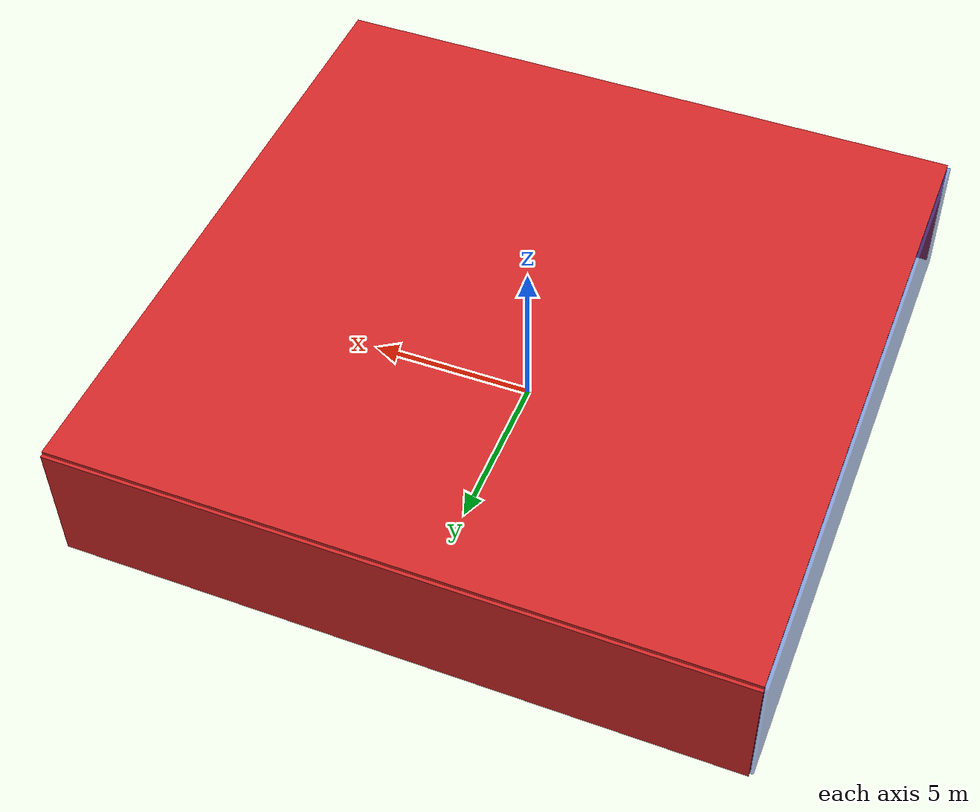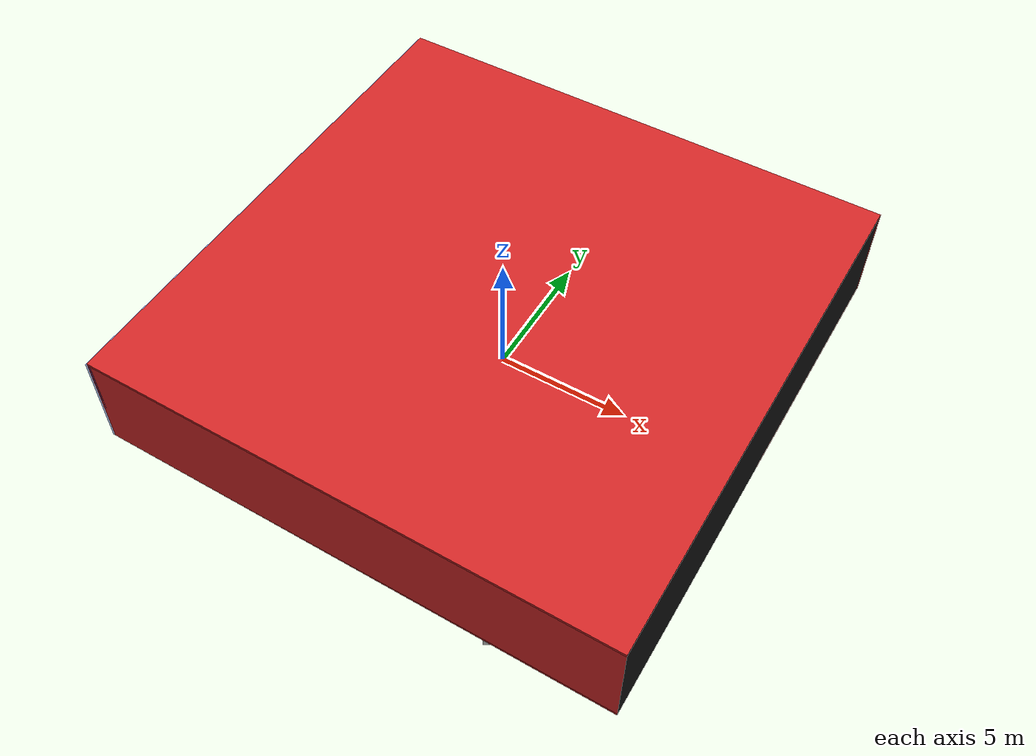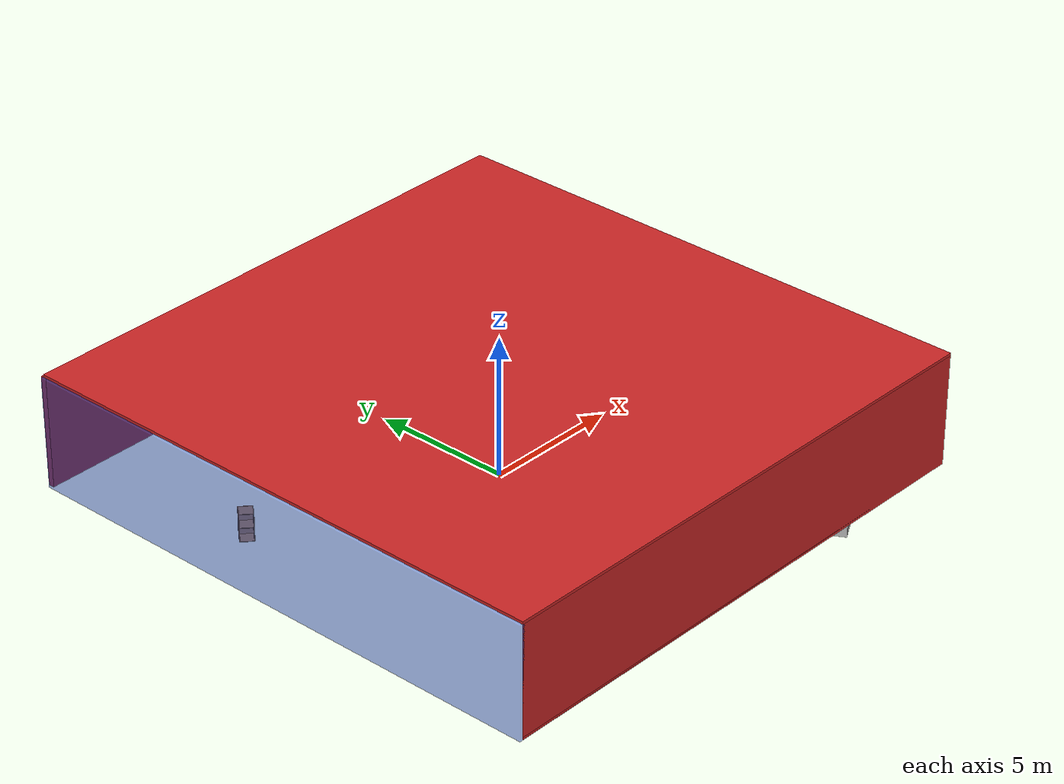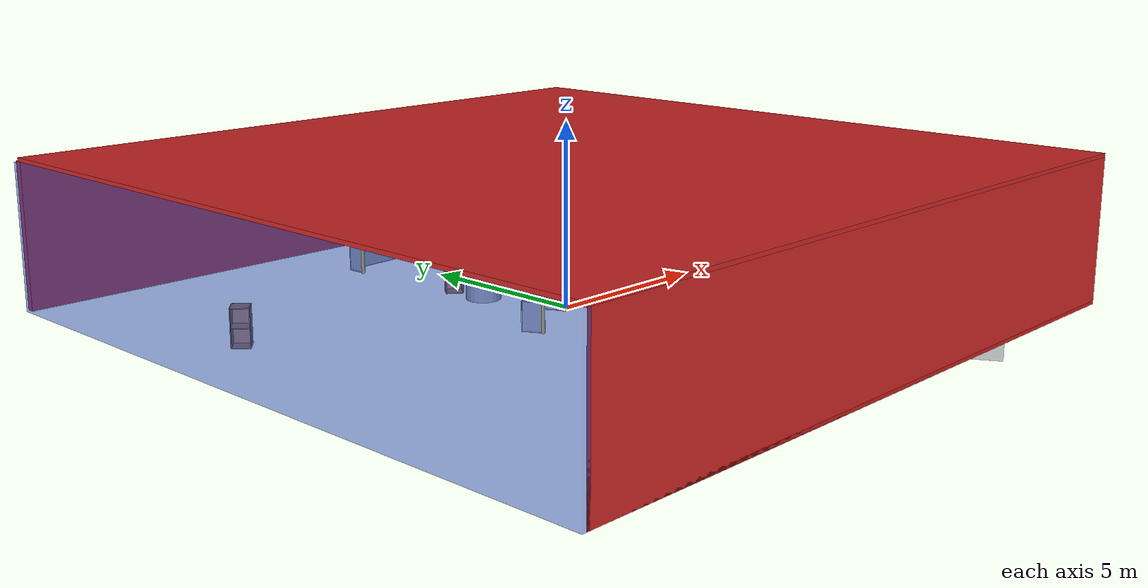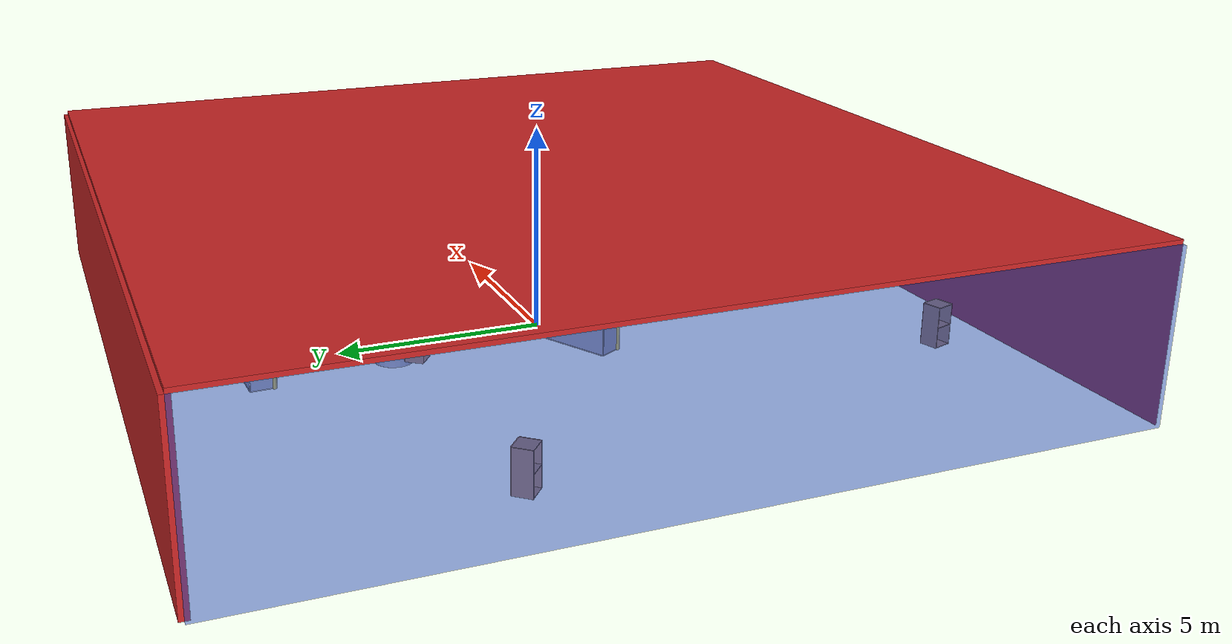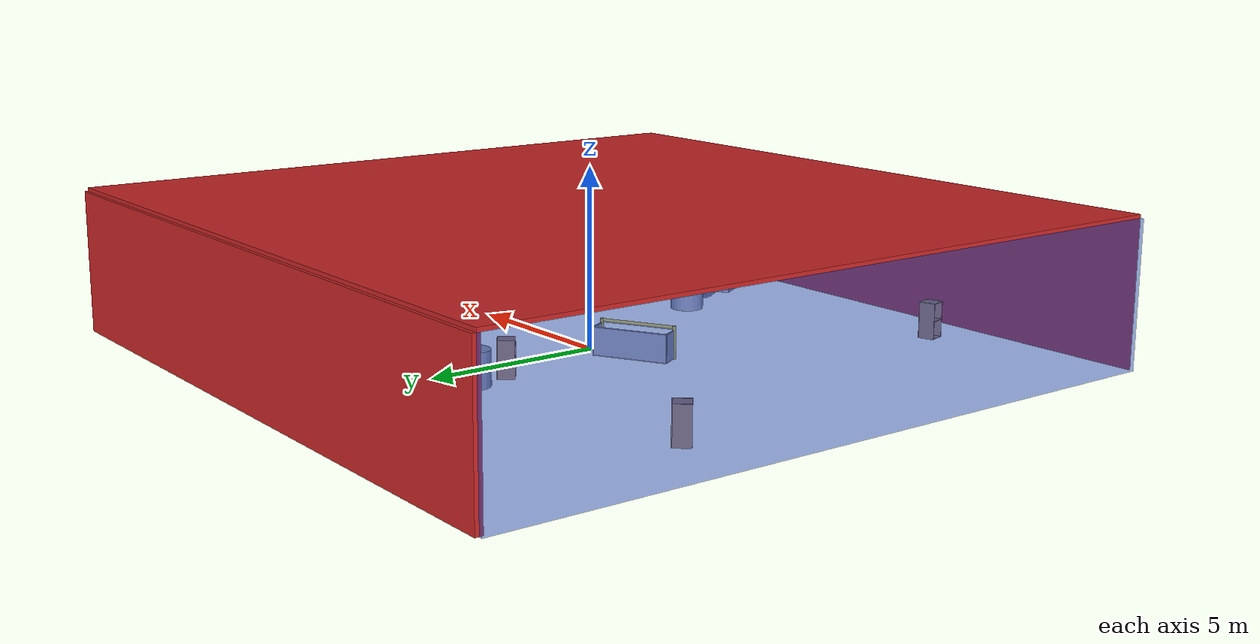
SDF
<sdf version="1.4">
 <world name="default">
  <physics type="ode">
   <max_step_size>0.001</max_step_size>
   <real_time_factor>1</real_time_factor>
   <real_time_update_rate>1000</real_time_update_rate>
   <gravity>0 0 -9.8</gravity>
  </physics>
  <scene><ambient>0.4 0.4 0.4 1</ambient><background>0.7 0.7 0.7 1</background><shadows>1</shadows></scene>
  <model name="Surrounding">
   <static>1</static>
   <link name="Ceiling">
    <collision name="Ceiling_Collision"><geometry><box><size>20 20 0.1</size></box></geometry></collision>
    <visual name="Ceiling_Visual">
     <geometry><box><size>20 20 0.1</size></box></geometry>
     <material>
      <script><uri>file://media/materials/scripts/gazebo.material</uri><name>Gazebo/RedGlow</name></script>
     </material>
    </visual>
    <pose>0 0 4.05 0 0 0</pose>
   </link>
   <link name="Wall_South">
    <collision name="Wall_South_Collision">
     <geometry><box><size>20 0 4</size></box></geometry>
     <pose>0 0 2 0 -0 0</pose>
    </collision>
    <visual name="Wall_South_Visual">
     <pose>0 0 2 0 -0 0</pose>
     <geometry><box><size>20 0 4</size></box></geometry>
     <material>
      <script><uri>file://media/materials/scripts/gazebo.material</uri><name>Gazebo/Red</name></script>
     </material>
    </visual>
    <velocity_decay><linear>0</linear><angular>0</angular></velocity_decay>
    <pose>0 -10 0 0 -0 0</pose>
   </link>
   <link name="Wall_East">
    <collision name="Wall_21_Collision">
     <geometry><box><size>20 0 4</size></box></geometry>
     <pose>0 0 2 0 -0 0</pose>
    </collision>
    <visual name="Wall_21_Visual">
     <pose>0 0 2 0 -0 0</pose>
     <geometry><box><size>20 0 4</size></box></geometry>
     <material>
      <script><uri>file://media/materials/scripts/gazebo.material</uri><name>Gazebo/FlatBlack</name></script>
     </material>
    </visual>
    <velocity_decay><linear>0</linear><angular>0</angular></velocity_decay>
    <pose>10 0 0 0 -0 1.5708</pose>
   </link>
   <link name="Wall_North">
    <collision name="Wall_22_Collision">
     <geometry><box><size>20 0.2 4</size></box></geometry>
     <pose>0 0 2 0 -0 0</pose>
    </collision>
    <visual name="Wall_22_Visual">
     <pose>0 0 2 0 -0 0</pose>
     <geometry><box><size>20 0.2 4</size></box></geometry>
     <material>
      <script><uri>file://media/materials/scripts/gazebo.material</uri><name>Gazebo/Red</name></script>
     </material>
    </visual>
    <velocity_decay><linear>0</linear><angular>0</angular></velocity_decay>
    <pose>0 10 0 0 -0 0</pose>
   </link>
   <link name="Wall_West">
    <collision name="Wall_23_Collision">
     <geometry><box><size>20 0.2 4</size></box></geometry>
     <pose>0 0 2 0 -0 0</pose>
    </collision>
    <visual name="Wall_23_Visual">
     <pose>0 0 2 0 -0 0</pose>
     <geometry><box><size>20 0.2 4</size></box></geometry>
     <material>
      <script><uri>file://media/materials/scripts/gazebo.material</uri><name>Gazebo/BlueTransparent</name></script>
     </material>
    </visual>
    <velocity_decay><linear>0</linear><angular>0</angular></velocity_decay>
    <pose>-10 0 0 0 0 -1.5708</pose>
   </link>
   <link name="Ground_link">
    <collision name="collision">
     <pose>0 0 .05 0 -0 0</pose>
     <geometry><box><size>20 20 0.1</size></box></geometry>
    </collision>
    <visual name="visual">
     <pose>0 0 .05 0 -0 0</pose>
     <geometry><box><size>20 20 0.1</size></box></geometry>
     <material>
      <script><uri>file://media/materials/scripts/gazebo.material</uri><name>Gazebo/RedTransparent</name></script>
     </material>
    </visual>
   </link>
   <static>1</static>
  </model>
  <spherical_coordinates>
   <surface_model>EARTH_WGS84</surface_model>
   <latitude_deg>0</latitude_deg>
   <longitude_deg>0</longitude_deg>
   <elevation>0</elevation>
   <heading_deg>0</heading_deg>
  </spherical_coordinates>
  <light name="lightball_0" type="diffuse">
   <diffuse>0.8 0.8 0.8 1</diffuse>
   <specular>0.2 0.2 0.2 1</specular>
   <attenuation>
    <range>100</range>
    <constant>0.7</constant>
    <linear>0.01</linear>
    <quadratic>0.001</quadratic>
   </attenuation>
   <direction>-0.5 0.1 -0.9</direction>
   <pose>-7.29285084501 4.42049779861 2.49911751787 0 0 0</pose>
  </light>
  <light name="lightball_1" type="diffuse">
   <diffuse>0.8 0.8 0.8 1</diffuse>
   <specular>0.2 0.2 0.2 1</specular>
   <attenuation>
    <range>100</range>
    <constant>0.7</constant>
    <linear>0.01</linear>
    <quadratic>0.001</quadratic>
   </attenuation>
   <direction>-0.5 0.1 -0.9</direction>
   <pose>1.77402558085 3.58563577703 1.71692329698 0 0 0</pose>
  </light>
  <light name="lightball_2" type="diffuse">
   <diffuse>0.8 0.8 0.8 1</diffuse>
   <specular>0.2 0.2 0.2 1</specular>
   <attenuation>
    <range>100</range>
    <constant>0.7</constant>
    <linear>0.01</linear>
    <quadratic>0.001</quadratic>
   </attenuation>
   <direction>-0.5 0.1 -0.9</direction>
   <pose>0.711819675112 -3.74901740516 1.94808616009 0 0 0</pose>
  </light>
  <light name="lightball_3" type="diffuse">
   <diffuse>0.8 0.8 0.8 1</diffuse>
   <specular>0.2 0.2 0.2 1</specular>
   <attenuation>
    <range>100</range>
    <constant>0.7</constant>
    <linear>0.01</linear>
    <quadratic>0.001</quadratic>
   </attenuation>
   <direction>-0.5 0.1 -0.9</direction>
   <pose>-3.56543258666 -3.97643452859 3.01560071953 0 0 0</pose>
  </light>
  <light name="lightball_4" type="diffuse">
   <diffuse>0.8 0.8 0.8 1</diffuse>
   <specular>0.2 0.2 0.2 1</specular>
   <attenuation>
    <range>100</range>
    <constant>0.7</constant>
    <linear>0.01</linear>
    <quadratic>0.001</quadratic>
   </attenuation>
   <direction>-0.5 0.1 -0.9</direction>
   <pose>6.6924438319 2.35077576928 0.847212846786 0 0 0</pose>
  </light>
  <light name="lightball_5" type="diffuse">
   <diffuse>0.8 0.8 0.8 1</diffuse>
   <specular>0.2 0.2 0.2 1</specular>
   <attenuation>
    <range>100</range>
    <constant>0.7</constant>
    <linear>0.01</linear>
    <quadratic>0.001</quadratic>
   </attenuation>
   <direction>-0.5 0.1 -0.9</direction>
   <pose>7.04028115298 -4.35522525845 2.35052666119 0 0 0</pose>
  </light>
  <light name="lightball_6" type="diffuse">
   <diffuse>0.8 0.8 0.8 1</diffuse>
   <specular>0.2 0.2 0.2 1</specular>
   <attenuation>
    <range>100</range>
    <constant>0.7</constant>
    <linear>0.01</linear>
    <quadratic>0.001</quadratic>
   </attenuation>
   <direction>-0.5 0.1 -0.9</direction>
   <pose>2.19764589262 -2.22408430121 1.8324107019 0 0 0</pose>
  </light>
  <light name="lightball_7" type="diffuse">
   <diffuse>0.8 0.8 0.8 1</diffuse>
   <specular>0.2 0.2 0.2 1</specular>
   <attenuation>
    <range>100</range>
    <constant>0.7</constant>
    <linear>0.01</linear>
    <quadratic>0.001</quadratic>
   </attenuation>
   <direction>-0.5 0.1 -0.9</direction>
   <pose>6.43642675607 9.23368028808 1.02607001817 0 0 0</pose>
  </light>
  <include><uri>model://cabinet</uri><pose>-7.93782129553 3.30891412026 0 0 0 0.862686027359</pose></include>
  <include><uri>model://cabinet</uri><pose>-4.5360769445 -8.43946664747 0 0 0 0.29363679852</pose></include>
  <include>
   <uri>model://robocup_3Dsim_goal</uri>
   <pose>-1.19018266549 -0.71044744807 0 0 0 2.07340070991</pose>
  </include>
  <include><uri>model://cabinet</uri><pose>-0.970208758036 3.35911477893 0 0 0 0.931194192302</pose></include>
  <include>
   <uri>model://robocup_3Dsim_goal</uri>
   <pose>-0.367996341802 6.83428786526 0 0 0 1.6119323905</pose>
  </include>
  <include>
   <uri>model://textured_shapes</uri>
   <pose>1.37490303469 4.64868987703 0 0 0 2.37888214233</pose>
  </include>
  <include>
   <uri>model://textured_shapes</uri>
   <pose>4.62744476842 -7.93500798738 0 0 0 0.517344748507</pose>
  </include>
 </world>
</sdf>

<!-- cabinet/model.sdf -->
<sdf version="1.5">
  <model name="cabinet">
    <static>true</static>
    <link name="cabinet_bottom_plate">
      <inertial>
        <pose>0 0 -1 0 0 0</pose>
        <inertia>
          <ixx>2.050000</ixx>
          <ixy>0</ixy>
          <ixz>0</ixz>
          <iyy>2.050000</iyy>
          <iyz>0</iyz>
          <izz>2.050000</izz>
        </inertia>
        <mass>25.000000</mass>
      </inertial>
      <collision name="cabinet_bottom_plate_geom">
        <pose>0 0 0.010000 0 0 0</pose>
        <geometry>
          <box>
            <size>0.450000 0.450000 0.020000</size>
          </box>
        </geometry>
      </collision>
      <visual name="cabinet_bottom_plate_geom_visual">
        <pose>0 0 0.010000 0 0 0</pose>
        <geometry>
          <box>
            <size>0.450000 0.450000 0.020000</size>
          </box>
        </geometry>
        <material>
          <script>
            <uri>model://media/materials/scripts/gazebo.material</uri>
            <name>Gazebo/Wood</name>
          </script>
        </material>
      </visual>
      <collision name="cabinet_bottom_plate_geom_cabinet_back_plate">
        <pose>0.235000 0 0.510000 0 0 0</pose>
        <geometry>
          <box>
            <size>0.020000 0.450000 1.020000</size>
          </box>
        </geometry>
      </collision>
      <visual name="cabinet_bottom_plate_geom_cabinet_back_plate_visual">
        <pose>0.235000 0 0.510000 0 0 0</pose>
        <geometry>
          <box>
            <size>0.020000 0.450000 1.020000</size>
          </box>
        </geometry>
        <material>
          <script>
            <uri>model://media/materials/scripts/gazebo.material</uri>
            <name>Gazebo/Wood</name>
          </script>
        </material>
      </visual>
      <collision name="cabinet_bottom_plate_geom_cabinet_left_plate">
        <pose>0 0.235000 0.510000 0 0 0</pose>
        <geometry>
          <box>
            <size>0.450000 0.020000 1.020000</size>
          </box>
        </geometry>
      </collision>
      <visual name="cabinet_bottom_plate_geom_cabinet_left_plate_visual">
        <pose>0 0.235000 0.510000 0 0 0</pose>
        <geometry>
          <box>
            <size>0.450000 0.020000 1.020000</size>
          </box>
        </geometry>
        <material>
          <script>
            <uri>model://media/materials/scripts/gazebo.material</uri>
            <name>Gazebo/Wood</name>
          </script>
        </material>
      </visual>
      <collision name="cabinet_bottom_plate_geom_cabinet_middle_plate">
        <pose>0 0 0.510000 0 0 0</pose>
        <geometry>
          <box>
            <size>0.450000 0.450000 0.020000</size>
          </box>
        </geometry>
      </collision>
      <visual name="cabinet_bottom_plate_geom_cabinet_middle_plate_visual">
        <pose>0 0 0.510000 0 0 0</pose>
        <geometry>
          <box>
            <size>0.450000 0.450000 0.020000</size>
          </box>
        </geometry>
        <material>
          <script>
            <uri>model://media/materials/scripts/gazebo.material</uri>
            <name>Gazebo/Wood</name>
          </script>
        </material>
      </visual>
      <collision name="cabinet_bottom_plate_geom_cabinet_right_plate">
        <pose>0 -0.235000 0.510000 0 0 0</pose>
        <geometry>
          <box>
            <size>0.450000 0.020000 1.020000</size>
          </box>
        </geometry>
      </collision>
      <visual name="cabinet_bottom_plate_geom_cabinet_right_plate_visual">
        <pose>0 -0.235000 0.510000 0 0 0</pose>
        <geometry>
          <box>
            <size>0.450000 0.020000 1.020000</size>
          </box>
        </geometry>
        <material>
          <script>
            <uri>model://media/materials/scripts/gazebo.material</uri>
            <name>Gazebo/Wood</name>
          </script>
        </material>
      </visual>
      <collision name="cabinet_bottom_plate_geom_cabinet_top_plate">
        <pose>0 0 1.010000 0 0 0</pose>
        <geometry>
          <box>
            <size>0.450000 0.450000 0.020000</size>
          </box>
        </geometry>
      </collision>
      <visual name="cabinet_bottom_plate_geom_cabinet_top_plate_visual">
        <pose>0 0 1.010000 0 0 0</pose>
        <geometry>
          <box>
            <size>0.450000 0.450000 0.020000</size>
          </box>
        </geometry>
        <material>
          <script>
            <uri>model://media/materials/scripts/gazebo.material</uri>
            <name>Gazebo/Wood</name>
          </script>
        </material>
      </visual>
    </link>
  </model>
</sdf>

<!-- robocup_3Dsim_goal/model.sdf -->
<sdf version="1.5">
  <model name="robocup_3d_goal">
    <static>true</static>
    <link name="left_post">
      <pose>0 1.05 0.45 0 0 0</pose>
      <collision name="collision">
        <geometry>
          <cylinder>
            <radius>0.05</radius>
            <length>0.9</length>
          </cylinder>
        </geometry>
      </collision>
      <visual name="visual">
        <geometry>
          <cylinder>
            <radius>0.05</radius>
            <length>0.9</length>
          </cylinder>
        </geometry>
        <material>
          <script>
            <uri>file://media/materials/scripts/gazebo.material</uri>
            <name>Gazebo/ZincYellow</name>
          </script>
        </material>
      </visual>
    </link>
    <link name="left_support_horiz_lower">
      <pose>0.30 1.05 0.01 0 0 0</pose>
      <collision name="collision">
        <geometry>
          <box>
            <size>0.50 0.02 0.02</size>
          </box>
        </geometry>
      </collision>
      <visual name="visual">
        <geometry>
          <box>
            <size>0.50 0.02 0.02</size>
          </box>
        </geometry>
        <material>
          <script>
            <uri>file://media/materials/scripts/gazebo.material</uri>
            <name>Gazebo/White</name>
          </script>
        </material>
      </visual>
    </link>
    <link name="left_support_horiz_upper">
      <pose>0.30 1.05 0.79 0 0 0</pose>
      <collision name="collision">
        <geometry>
          <box>
            <size>0.50 0.02 0.02</size>
          </box>
        </geometry>
      </collision>
      <visual name="visual">
        <geometry>
          <box>
            <size>0.50 0.02 0.02</size>
          </box>
        </geometry>
        <material>
          <script>
            <uri>file://media/materials/scripts/gazebo.material</uri>
            <name>Gazebo/White</name>
          </script>
        </material>
      </visual>
    </link>
    <link name="left_support_vertical">
      <pose>0.56 1.05 0.4 0 1.5708 0</pose>
      <collision name="collision">
        <geometry>
          <box>
            <size>0.80 0.02 0.02</size>
          </box>
        </geometry>
      </collision>
      <visual name="visual">
        <geometry>
          <box>
            <size>0.80 0.02 0.02</size>
          </box>
        </geometry>
        <material>
          <script>
            <uri>file://media/materials/scripts/gazebo.material</uri>
            <name>Gazebo/White</name>
          </script>
        </material>
      </visual>
    </link>
    <link name="right_support_horiz_lower">
      <pose>0.30 -1.05 0.01 0 0 0</pose>
      <collision name="collision">
        <geometry>
          <box>
            <size>0.50 0.02 0.02</size>
          </box>
        </geometry>
      </collision>
      <visual name="visual">
        <geometry>
          <box>
            <size>0.50 0.02 0.02</size>
          </box>
        </geometry>
        <material>
          <script>
            <uri>file://media/materials/scripts/gazebo.material</uri>
            <name>Gazebo/White</name>
          </script>
        </material>
      </visual>
    </link>
    <link name="right_support_horiz_upper">
      <pose>0.30 -1.05 0.79 0 0 0</pose>
      <collision name="collision">
        <geometry>
          <box>
            <size>0.50 0.02 0.02</size>
          </box>
        </geometry>
      </collision>
      <visual name="visual">
        <geometry>
          <box>
            <size>0.50 0.02 0.02</size>
          </box>
        </geometry>
        <material>
          <script>
            <uri>file://media/materials/scripts/gazebo.material</uri>
            <name>Gazebo/White</name>
          </script>
        </material>
      </visual>
    </link>
    <link name="right_support_vertical">
      <pose>0.56 -1.05 0.4 0 1.5708 0</pose>
      <collision name="collision">
        <geometry>
          <box>
            <size>0.80 0.02 0.02</size>
          </box>
        </geometry>
      </collision>
      <visual name="visual">
        <geometry>
          <box>
            <size>0.80 0.02 0.02</size>
          </box>
        </geometry>
        <material>
          <script>
            <uri>file://media/materials/scripts/gazebo.material</uri>
            <name>Gazebo/White</name>
          </script>
        </material>
      </visual>
    </link>
    <link name="center_support_horiz_lower">
      <pose>0.56 0 0.01 0 1.5708 0</pose>
      <collision name="collision">
        <geometry>
          <box>
            <size>0.02 2.08 0.02</size>
          </box>
        </geometry>
      </collision>
      <visual name="visual">
        <geometry>
          <box>
            <size>0.02 2.08 0.02</size>
          </box>
        </geometry>
        <material>
          <script>
            <uri>file://media/materials/scripts/gazebo.material</uri>
            <name>Gazebo/White</name>
          </script>
        </material>
      </visual>
    </link>
    <link name="center_support_horiz_upper">
      <pose>0.56 0 0.79 0 1.5708 0</pose>
      <collision name="collision">
        <geometry>
          <box>
            <size>0.02 2.08 0.02</size>
          </box>
        </geometry>
      </collision>
      <visual name="visual">
        <geometry>
          <box>
            <size>0.02 2.08 0.02</size>
          </box>
        </geometry>
        <material>
          <script>
            <uri>file://media/materials/scripts/gazebo.material</uri>
            <name>Gazebo/White</name>
          </script>
        </material>
      </visual>
    </link>
    <link name="right_post">
      <pose>0 -1.05 0.45 0 0 0</pose>
      <collision name="collision">
        <geometry>
          <cylinder>
            <radius>0.05</radius>
            <length>0.9</length>
          </cylinder>
        </geometry>
      </collision>
      <visual name="visual">
        <geometry>
          <cylinder>
            <radius>0.05</radius>
            <length>0.9</length>
          </cylinder>
        </geometry>
        <material>
          <script>
            <uri>file://media/materials/scripts/gazebo.material</uri>
            <name>Gazebo/ZincYellow</name>
          </script>
        </material>
      </visual>
    </link>
    <link name="crossbar">
      <pose>0 0 0.85 1.57 1.57 0</pose>
      <collision name="collision">
        <geometry>
          <cylinder>
            <radius>0.05</radius>
            <length>2.0</length>
          </cylinder>
        </geometry>
      </collision>
      <visual name="visual">
        <geometry>
          <cylinder>
            <radius>0.05</radius>
            <length>2.0</length>
          </cylinder>
        </geometry>
        <material>
          <script>
            <uri>file://media/materials/scripts/gazebo.material</uri>
            <name>Gazebo/ZincYellow</name>
          </script>
        </material>
      </visual>
    </link>
    <link name="center_net">
      <pose>0.56 0 0.40 0 0 0</pose>
      <collision name="collision">
        <geometry>
          <box>
            <size>0.01 2.1 0.80</size>
          </box>
        </geometry>
      </collision>
      <visual name="visual">
        <geometry>
          <box>
            <size>0.01 2.1 0.80</size>
          </box>
        </geometry>
        <material>
          <script>
            <uri>model://../model_source/models/robocup09_spl_field/materials/scripts/</uri>
            <uri>model://../model_source/models/robocup09_spl_field/materials/textures/</uri>
            <name>RoboCup/Net</name>
          </script>
        </material>
      </visual>
    </link>
    <link name="left_net">
      <pose>0.30 1.05 0.40 0 0 0</pose>
      <collision name="collision">
        <geometry>
          <box>
            <size>0.50 0.01 0.76</size>
          </box>
        </geometry>
      </collision>
      <visual name="visual">
        <geometry>
          <box>
            <size>0.50 0.01 0.76</size>
          </box>
        </geometry>
        <material>
          <script>
            <uri>model://../model_source/models/robocup09_spl_field/materials/scripts/</uri>
            <uri>model://../model_source/models/robocup09_spl_field/materials/textures/</uri>
            <name>RoboCup/Net</name>
          </script>
        </material>
      </visual>
    </link>
    <link name="right_net">
      <pose>0.30 -1.05 0.40 0 0 0</pose>
      <collision name="collision">
        <geometry>
          <box>
            <size>0.50 0.01 0.76</size>
          </box>
        </geometry>
      </collision>
      <visual name="visual">
        <geometry>
          <box>
            <size>0.50 0.01 0.76</size>
          </box>
        </geometry>
        <material>
          <script>
            <uri>model://../model_source/models/robocup09_spl_field/materials/scripts/</uri>
            <uri>model://../model_source/models/robocup09_spl_field/materials/textures/</uri>
            <name>RoboCup/Net</name>
          </script>
        </material>
      </visual>
    </link>
  </model>
</sdf>

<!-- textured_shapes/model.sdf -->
<sdf version="1.6">
  <model name="textured_shapes">
    <pose>0 0 0.5 0 0 0</pose>
    <link name="box">
      <pose>0 -1.5 0 0 0 0</pose>
      <collision name="collision">
        <geometry>
          <box>
            <size>1 1 1</size>
          </box>
        </geometry>
      </collision>
      <visual name="visual">
        <geometry>
          <box>
            <size>1 1 1</size>
          </box>
        </geometry>
        <material>
          <script>
            <uri>model://../model_source/models/textured_shapes/materials/scripts</uri>
            <uri>model://../model_source/models/textured_shapes/materials/textures</uri>
            <name>TexturedShape/Squares</name>
          </script>
        </material>
      </visual>
    </link>
    <link name="sphere">
      <collision name="collision">
        <geometry>
          <sphere>
            <radius>0.5</radius>
          </sphere>
        </geometry>
      </collision>
      <visual name="visual">
        <geometry>
          <sphere>
            <radius>0.5</radius>
          </sphere>
        </geometry>
        <material>
          <script>
            <uri>model://../model_source/models/textured_shapes/materials/scripts</uri>
            <uri>model://../model_source/models/textured_shapes/materials/textures</uri>
            <name>TexturedShape/Squares</name>
          </script>
        </material>
      </visual>
    </link>
    <link name="cylinder">
      <pose>0 1.5 0 0 0 0</pose>
      <collision name="collision">
        <geometry>
          <cylinder>
            <radius>0.5</radius>
            <length>1</length>
          </cylinder>
        </geometry>
      </collision>
      <visual name="visual">
        <geometry>
          <cylinder>
            <radius>0.5</radius>
            <length>1</length>
          </cylinder>
        </geometry>
        <material>
          <script>
            <uri>model://../model_source/models/textured_shapes/materials/scripts</uri>
            <uri>model://../model_source/models/textured_shapes/materials/textures</uri>
            <name>TexturedShape/Squares</name>
          </script>
        </material>
      </visual>
    </link>
  </model>
</sdf>
